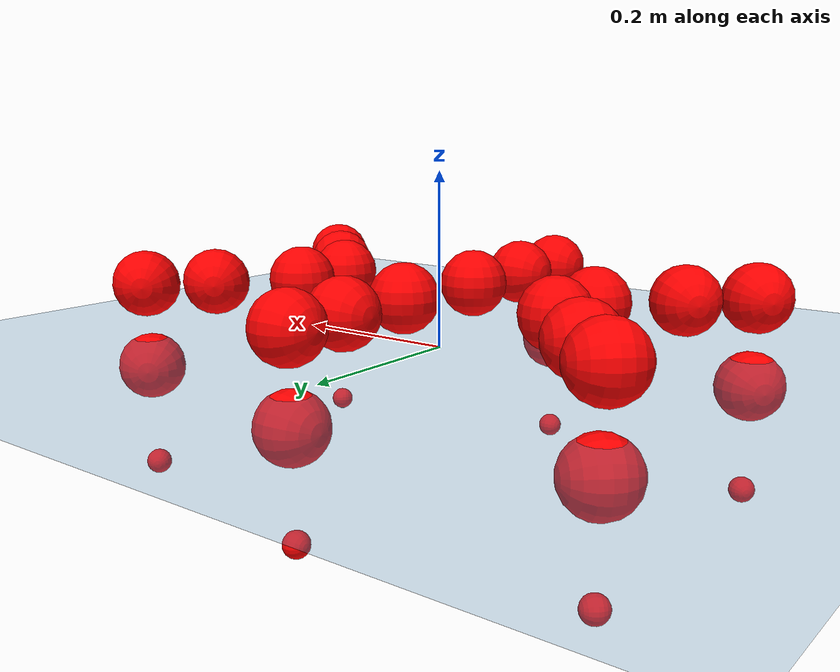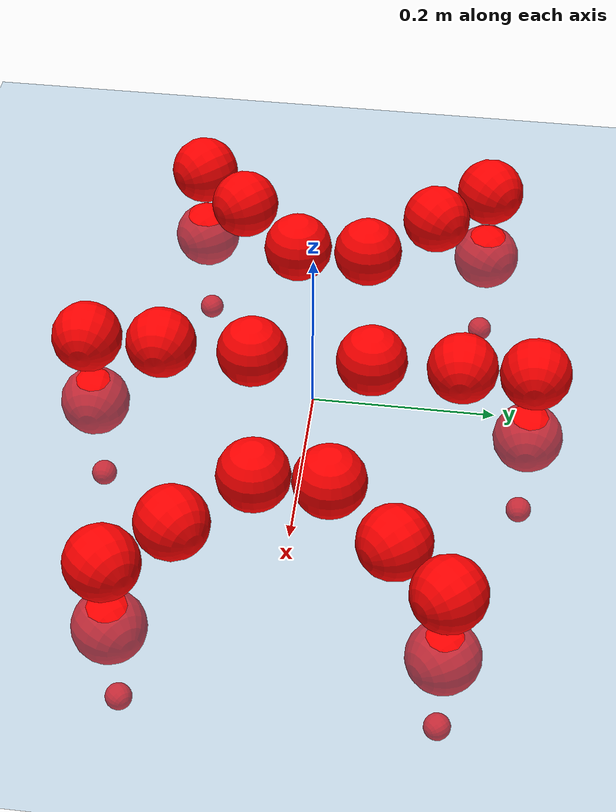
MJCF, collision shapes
<mujoco model="Golem">
  <compiler angle="radian" assetdir="assets" balanceinertia="true" inertiafromgeom="false"/>

  <option timestep="0.005" density="1.2" viscosity="2e-05"/>

  <size nkey="1"/>

  <visual>
    <quality shadowsize="8192"/>
    <map shadowclip="0.5"/>
  </visual>

  <default>
    <default class="/">
      <joint armature="0.01" damping="0.01" frictionloss="0.01"/>
      <geom contype="0" conaffinity="0" group="1" solref="-1000 -80"/>
      <site size="0.01 0.005 0.005" group="5"/>
      <general forcelimited="true" biastype="affine" gainprm="25" biasprm="0 -25 -0.5"/>
      <default class="visual">
        <geom type="mesh" group="2"/>
      </default>
      <default class="collision">
        <geom group="3"/>
      </default>
      <default class="foot">
        <geom size="0.01 0 0" condim="6" group="4" priority="1" solimp="0.015 1 0.01"/>
      </default>
      <default class="reward_collision_sphere">
        <geom group="5" rgba="1 0 0 1"/>
      </default>
    </default>
  </default>

  <asset>
    <texture type="skybox" colorspace="auto" name="//unnamed_texture_0" builtin="gradient" rgb1="0.95 0.95 0.95" rgb2="0.95 0.95 0.95" width="100" height="600"/>
    <texture type="2d" colorspace="auto" name="texplane" builtin="checker" rgb1="0.345 0.575 0.748" rgb2="0.345 0.575 0.748" markrgb="1 1 1" width="512" height="512"/>
    <material name="MatPlane" class="/" texture="texplane" texuniform="true" texrepeat="2 2" specular="0.9"/>
    <mesh name="body" class="/" file="body.stl" scale="0.001 0.001 0.001"/>
    <mesh name="coxa" class="/" file="coxa.stl" scale="0.001 0.001 0.001"/>
    <mesh name="femur" class="/" file="femur.stl" scale="0.001 0.001 0.001"/>
    <mesh name="tibia" class="/" file="tibia.stl" scale="0.001 0.001 0.001"/>
    <mesh name="tarsus" class="/" file="tarsus.stl" scale="0.001 0.001 0.001"/>
  </asset>

  <worldbody>
    <geom name="floor" class="/" size="100 100 0.125" type="plane" group="0" material="MatPlane"/>
    <light name="toplight_shadow" class="/" pos="0 0 5" dir="0.0990148 0.0990148 -0.990148" type="directional" ambient="0.04 0.04 0.04" diffuse="0.55 0.55 0.55" specular="0.12 0.12 0.12"/>
    <light name="toplight_fill" class="/" pos="0 0 5" dir="0.0990148 0.0990148 -0.990148" type="directional" castshadow="false" ambient="0.04 0.04 0.04" diffuse="0.3 0.3 0.3" specular="0.08 0.08 0.08"/>
    <body name="trunk" pos="0.00086598 9.91029e-05 0.000628124" quat="1 -1.95144e-05 1.8622e-05 0.000148255">
      <inertial pos="-0.00023346 -0.000878011 -0.00363342" quat="1 -0.000226901 7.02529e-06 -8.687e-05" mass="3.44893" diaginertia="0.018667 0.00242601 0.0120409"/>
      <joint name="//unnamed_joint_0" type="free"/>
      <geom name="//unnamed_geom_1" class="/" pos="0 0 0.0662825" quat="1 0 0 0" type="mesh" rgba="0.9 0.9 0.9 1" mesh="body"/>
      <site name="imu" class="/" pos="0.145037 -0.000864065 0.106095" size="0.00973631"/>
      <camera name="track" class="/" pos="0 -1.50487 0" quat="0.707107 0.707107 0 0" mode="trackcom"/>
      <camera name="ego_camera" class="/" pos="0.147263 0 0.103566" quat="-0.5 -0.5 0.5 0.5"/>
      <body name="coxa_RR" pos="-0.20086 -0.0632515 0.0660437" quat="0.382825 6.01813e-05 4.5793e-05 -0.923821">
        <inertial pos="-0.000303892 -9.62894e-05 0.000644039" quat="0.999991 -0.00374782 -0.000383198 0.00202455" mass="0.186667" diaginertia="0.0187319 0.00243784 0.012027"/>
        <joint name="coxa_joint_RR" class="/" pos="0 0 0" axis="0.00408063 0.00414235 -0.999983" range="-3.13236 3.13604" armature="0.0099787" damping="0.00597136" frictionloss="0.0101065"/>
        <geom name="//unnamed_geom_2" class="/" type="mesh" rgba="0.2 0.2 0.2 1" mesh="coxa"/>
        <geom name="//unnamed_geom_3" class="reward_collision_sphere" size="0.0389452" pos="-0.0339838 0 0"/>
        <body name="femur_RR" pos="0.0667598 0.00129388 -0.000198481" quat="0.499725 -0.500195 0.499981 0.500099">
          <inertial pos="0.000251493 -0.000247599 0.000419104" quat="0.999998 0.000694244 0.00110305 -0.00180501" mass="0.184515" diaginertia="0.0184555 0.00241532 0.0118898"/>
          <joint name="femur_joint_RR" class="/" pos="0 0 0" axis="0.00192418 0.00177524 -0.999997" range="-3.13137 3.14" armature="0.00985062" damping="0" frictionloss="0.00995989"/>
          <geom name="//unnamed_geom_4" class="/" type="mesh" rgba="0.9 0.9 0.9 1" mesh="femur"/>
          <geom name="//unnamed_geom_5" class="reward_collision_sphere" size="0.0389452"/>
          <body name="tibia_RR" pos="-0.000636472 -0.0810382 4.59447e-05" quat="6.53454e-05 1 -2.02334e-05 0.000106575">
            <inertial pos="-0.00052424 -0.000662156 -0.000407095" quat="1 0.000166466 -0.000765696 0.000590035" mass="0.183488" diaginertia="0.0185571 0.00241362 0.0118972"/>
            <joint name="tibia_joint_RR" class="/" pos="0 0 0" axis="-0.000523374 5.31928e-05 1" range="-3.13961 3.13954" armature="0.0097035" damping="0.000661065" frictionloss="0.0101502"/>
            <geom name="//unnamed_geom_6" class="/" type="mesh" rgba="0.2 0.2 0.2 1" mesh="tibia"/>
            <geom name="//unnamed_geom_7" class="reward_collision_sphere" size="0.0389452"/>
            <body name="tarsus_RR" pos="0.0989374 -0.000864755 -0.00124562" quat="1 1.77851e-06 -7.81485e-06 -1.07246e-06">
              <inertial pos="0.0688683 0.000584029 0.000184693" quat="0.49682 0.501044 0.500883 0.501239" mass="0.182053" diaginertia="0.0185379 0.00238979 0.0119226"/>
              <joint name="tarsus_joint_RR" class="/" pos="0 0 0" axis="-0.000209865 -0.000892259 1" range="-3.14595 3.1492" armature="0.00959585" damping="0.00279306" frictionloss="0.00977788"/>
              <geom name="//unnamed_geom_8" class="/" type="mesh" rgba="0.9 0.9 0.9 1" mesh="tarsus"/>
              <geom name="foot_1" class="foot" size="0.00929893" pos="0.126873 0 0" quat="0 -0.707107 0 0.707107"/>
              <geom name="//unnamed_geom_10" class="reward_collision_sphere" size="0.0389452"/>
              <geom name="//unnamed_geom_11" class="reward_collision_sphere" size="0.0146045" pos="0.121775 0 0"/>
              <site name="foot_1" class="foot" pos="0.126873 0 0" quat="0 -0.707107 0 0.707107" size="0.00973631"/>
            </body>
          </body>
        </body>
      </body>
      <body name="coxa_RM" pos="-0.000482856 -0.10044 0.0651742" quat="0.707063 -0.000148181 0.000160016 -0.70715">
        <inertial pos="-0.000169382 0.000870979 -0.000177729" quat="0.999999 0.000218564 -0.00104141 -0.000157931" mass="0.183603" diaginertia="0.0186069 0.00241219 0.0118052"/>
        <joint name="coxa_joint_RM" class="/" pos="0 0 0" axis="-0.000941016 0.00106364 -0.999999" range="-3.14725 3.14333" armature="0.00968482" damping="0.00870216" frictionloss="0.00973519"/>
        <geom name="//unnamed_geom_12" class="/" type="mesh" rgba="0.2 0.2 0.2 1" mesh="coxa"/>
        <geom name="//unnamed_geom_13" class="reward_collision_sphere" size="0.0389452" pos="-0.0339838 0 0"/>
        <body name="femur_RM" pos="0.0664556 -0.000756693 0.000782057" quat="0.500025 -0.500035 0.500004 0.499937">
          <inertial pos="-1.57624e-05 0.000667377 -0.000466799" quat="1 0.000358978 0.00039864 -0.00031608" mass="0.183346" diaginertia="0.0186494 0.00241001 0.011844"/>
          <joint name="femur_joint_RM" class="/" pos="0 0 0" axis="0.0011079 -0.00252731 -0.999996" range="-3.12999 3.13637" armature="0.0096249" damping="0.00554369" frictionloss="0.00989068"/>
          <geom name="//unnamed_geom_14" class="/" type="mesh" rgba="0.9 0.9 0.9 1" mesh="femur"/>
          <geom name="//unnamed_geom_15" class="reward_collision_sphere" size="0.0389452"/>
          <body name="tibia_RM" pos="0.000778481 -0.0822288 -0.000215081" quat="-8.00184e-05 1 -9.74316e-06 -0.00022945">
            <inertial pos="-0.000105887 0.000320644 0.000238338" quat="1 -8.10247e-05 -0.000157355 0.000114883" mass="0.183712" diaginertia="0.0184325 0.002386 0.0119028"/>
            <joint name="tibia_joint_RM" class="/" pos="0 0 0" axis="-0.00122812 0.00023737 0.999999" range="-3.14009 3.14729" armature="0.00954083" damping="0" frictionloss="0.00954948"/>
            <geom name="//unnamed_geom_16" class="/" type="mesh" rgba="0.2 0.2 0.2 1" mesh="tibia"/>
            <geom name="//unnamed_geom_17" class="reward_collision_sphere" size="0.0389452"/>
            <body name="tarsus_RM" pos="0.0999679 -0.000621314 0.00067176" quat="1 -8.20476e-05 8.06961e-06 -4.63866e-05">
              <inertial pos="0.0677589 0.000710676 -0.000666268" quat="0.496632 0.501142 0.500637 0.501573" mass="0.184794" diaginertia="0.0184915 0.0024148 0.0118923"/>
              <joint name="tarsus_joint_RM" class="/" pos="0 0 0" axis="-0.00131869 0.000180342 0.999999" range="-3.13114 3.13597" armature="0.00968335" damping="0.00832672" frictionloss="0.00951024"/>
              <geom name="//unnamed_geom_18" class="/" type="mesh" rgba="0.9 0.9 0.9 1" mesh="tarsus"/>
              <geom name="foot_2" class="foot" size="0.00983795" pos="0.126873 0 0" quat="0 -0.707107 0 0.707107"/>
              <geom name="//unnamed_geom_20" class="reward_collision_sphere" size="0.0389452"/>
              <geom name="//unnamed_geom_21" class="reward_collision_sphere" size="0.0146045" pos="0.121775 0 0"/>
              <site name="foot_2" class="foot" pos="0.126873 0 0" quat="0 -0.707107 0 0.707107" size="0.00973631"/>
            </body>
          </body>
        </body>
      </body>
      <body name="coxa_RF" pos="0.202604 -0.0627601 0.0662426" quat="0.923756 -0.000252128 0.00034852 -0.382982">
        <inertial pos="-3.62133e-05 -0.000754975 0.000677293" quat="0.999998 0.000622357 -0.00144797 -0.000814875" mass="0.181848" diaginertia="0.0184274 0.00240126 0.0118668"/>
        <joint name="coxa_joint_RF" class="/" pos="0 0 0" axis="-0.000814792 0.00342451 -0.999994" range="-3.13865 3.12136" armature="0.00981325" damping="0" frictionloss="0.00970424"/>
        <geom name="//unnamed_geom_22" class="/" type="mesh" rgba="0.2 0.2 0.2 1" mesh="coxa"/>
        <geom name="//unnamed_geom_23" class="reward_collision_sphere" size="0.0389452" pos="-0.0339838 0 0"/>
        <body name="femur_RF" pos="0.0672537 0.00117114 -0.000166571" quat="0.499957 -0.499976 0.500034 0.500033">
          <inertial pos="0.000296051 -0.000295545 -0.000604525" quat="0.999998 0.00132934 -0.00138557 0.000740338" mass="0.184825" diaginertia="0.0185887 0.00237861 0.0118303"/>
          <joint name="femur_joint_RF" class="/" pos="0 0 0" axis="0.00029183 0.000461301 -1" range="-3.14089 3.14718" armature="0.00971893" damping="0.00582426" frictionloss="0.0101338"/>
          <geom name="//unnamed_geom_24" class="/" type="mesh" rgba="0.9 0.9 0.9 1" mesh="femur"/>
          <geom name="//unnamed_geom_25" class="reward_collision_sphere" size="0.0389452"/>
          <body name="tibia_RF" pos="0.000423288 -0.0824339 -3.94399e-05" quat="0.000146424 1 3.80455e-05 -7.46678e-05">
            <inertial pos="-0.000724095 0.000621373 8.18062e-06" quat="0.999999 -0.000900075 0.000616167 -0.00020954" mass="0.186436" diaginertia="0.0188648 0.00243799 0.011898"/>
            <joint name="tibia_joint_RF" class="/" pos="0 0 0" axis="-0.00503065 0.00284062 0.999983" stiffness="7.28402e-05" range="-3.13904 3.13952" armature="0.00996012" damping="0.00560184" frictionloss="0.00987816"/>
            <geom name="//unnamed_geom_26" class="/" type="mesh" rgba="0.2 0.2 0.2 1" mesh="tibia"/>
            <geom name="//unnamed_geom_27" class="reward_collision_sphere" size="0.0389452"/>
            <body name="tarsus_RF" pos="0.0993354 0.00106398 -0.000639641" quat="1 0.00016041 -0.000292285 -4.31896e-05">
              <inertial pos="0.0673476 0.00030567 -0.000205571" quat="0.499111 0.500434 0.499813 0.50064" mass="0.184266" diaginertia="0.01862 0.00243148 0.0118244"/>
              <joint name="tarsus_joint_RF" class="/" pos="0 0 0" axis="6.79449e-05 -0.00147864 0.999999" stiffness="0.00290175" range="-3.12428 3.13757" armature="0.00972628" damping="0.00142258" frictionloss="0.00956881"/>
              <geom name="//unnamed_geom_28" class="/" type="mesh" rgba="0.9 0.9 0.9 1" mesh="tarsus"/>
              <geom name="foot_3" class="foot" size="0.0100159" pos="0.126873 0 0" quat="0 -0.707107 0 0.707107"/>
              <geom name="//unnamed_geom_30" class="reward_collision_sphere" size="0.0389452"/>
              <geom name="//unnamed_geom_31" class="reward_collision_sphere" size="0.0146045" pos="0.121775 0 0"/>
              <site name="foot_3" class="foot" pos="0.126873 0 0" quat="0 -0.707107 0 0.707107" size="0.00973631"/>
            </body>
          </body>
        </body>
      </body>
      <body name="coxa_LR" pos="-0.201282 0.0655101 0.0673052" quat="0.382846 -1.95729e-05 5.97713e-05 0.923812">
        <inertial pos="-0.000100803 -0.000616671 0.000588178" quat="0.999999 0.00100593 -0.000453942 -0.000360242" mass="0.183947" diaginertia="0.0186727 0.00242501 0.0119293"/>
        <joint name="coxa_joint_LR" class="/" pos="0 0 0" axis="5.7261e-05 0.00182398 -0.999998" range="-3.12952 3.14331" armature="0.00985738" damping="0.00939453" frictionloss="0.00972664"/>
        <geom name="//unnamed_geom_32" class="/" type="mesh" rgba="0.2 0.2 0.2 1" mesh="coxa"/>
        <geom name="//unnamed_geom_33" class="reward_collision_sphere" size="0.0389452" pos="-0.0339838 0 0"/>
        <body name="femur_LR" pos="0.068393 -0.0015058 -0.00236343" quat="0.500002 -0.500001 0.499993 0.500004">
          <inertial pos="-0.000488648 0.000190387 -0.00100538" quat="1 0.000279374 0.000238178 -0.000116961" mass="0.182726" diaginertia="0.0186743 0.00240516 0.0118992"/>
          <joint name="femur_joint_LR" class="/" pos="0 0 0" axis="-6.38278e-06 0.000103728 1" range="-3.14722 3.14191" armature="0.0097808" damping="0.00675355" frictionloss="0.00983299"/>
          <geom name="//unnamed_geom_34" class="/" type="mesh" rgba="0.9 0.9 0.9 1" mesh="femur"/>
          <geom name="//unnamed_geom_35" class="reward_collision_sphere" size="0.0389452"/>
          <body name="tibia_LR" pos="-0.00072369 -0.0826771 -0.00200445" quat="-5.45373e-05 1 -9.37051e-05 -0.000197871">
            <inertial pos="-0.000713447 0.00041621 -0.000132372" quat="1 0.000372378 -0.000388888 0.000360344" mass="0.182787" diaginertia="0.0187505 0.00239357 0.0120326"/>
            <joint name="tibia_joint_LR" class="/" pos="0 0 0" axis="-0.0012812 -0.00088723 -0.999999" range="-3.13621 3.14983" armature="0.00968246" damping="0.0038115" frictionloss="0.00978824"/>
            <geom name="//unnamed_geom_36" class="/" type="mesh" rgba="0.2 0.2 0.2 1" mesh="tibia"/>
            <geom name="//unnamed_geom_37" class="reward_collision_sphere" size="0.0389452"/>
            <body name="tarsus_LR" pos="0.0992506 0.000672615 0.00212054" quat="1 2.47399e-06 1.47123e-06 -1.21109e-06">
              <inertial pos="0.0688036 0.00108019 -0.000194776" quat="0.50007 0.499912 0.500052 0.499965" mass="0.184392" diaginertia="0.0186928 0.00242488 0.0118308"/>
              <joint name="tarsus_joint_LR" class="/" pos="0 0 0" axis="-0.000124376 -0.00033624 -1" range="-3.13863 3.1345" armature="0.00962243" damping="0.0263785" frictionloss="0.00957708"/>
              <geom name="//unnamed_geom_38" class="/" type="mesh" rgba="0.9 0.9 0.9 1" mesh="tarsus"/>
              <geom name="foot_4" class="foot" size="0.00954633" pos="0.126873 0 0" quat="0.707107 0 -0.707107 0"/>
              <geom name="//unnamed_geom_40" class="reward_collision_sphere" size="0.0389452"/>
              <geom name="//unnamed_geom_41" class="reward_collision_sphere" size="0.0146045" pos="0.121775 0 0"/>
              <site name="foot_4" class="foot" pos="0.126873 0 0" quat="0.707107 0 -0.707107 0" size="0.00973631"/>
            </body>
          </body>
        </body>
      </body>
      <body name="coxa_LM" pos="-0.00109234 0.097619 0.0664821" quat="0.7072 -0.000148686 7.14854e-05 0.707014">
        <inertial pos="-6.13422e-05 8.09843e-05 0.000832794" quat="1 -0.000391049 -9.96553e-05 1.0765e-05" mass="0.185504" diaginertia="0.0188897 0.00242573 0.011911"/>
        <joint name="coxa_joint_LM" class="/" pos="0 0 0" axis="0.00032986 -0.000536406 -1" range="-3.13994 3.13959" armature="0.00975553" damping="0.000958117" frictionloss="0.0101367"/>
        <geom name="//unnamed_geom_42" class="/" type="mesh" rgba="0.2 0.2 0.2 1" mesh="coxa"/>
        <geom name="//unnamed_geom_43" class="reward_collision_sphere" size="0.0389452" pos="-0.0339838 0 0"/>
        <body name="femur_LM" pos="0.0638874 0.00136111 -0.00107356" quat="0.499999 -0.500064 0.4999 0.500037">
          <inertial pos="-0.000953974 -0.000377339 0.000754825" quat="0.999999 -0.0012174 -0.000183898 -0.000144839" mass="0.182395" diaginertia="0.0183092 0.00239426 0.0117169"/>
          <joint name="femur_joint_LM" class="/" pos="0 0 0" axis="-0.0025044 -0.0049614 0.999985" range="-3.14128 3.1492" armature="0.00953764" damping="0" frictionloss="0.00973779"/>
          <geom name="//unnamed_geom_44" class="/" type="mesh" rgba="0.9 0.9 0.9 1" mesh="femur"/>
          <geom name="//unnamed_geom_45" class="reward_collision_sphere" size="0.0389452"/>
          <body name="tibia_LM" pos="0.000453318 -0.0783887 0.00112606" quat="-9.63243e-05 1 4.89958e-05 -2.24452e-05">
            <inertial pos="-1.10412e-06 -0.00163596 -0.000190468" quat="0.999999 -0.000246455 -0.000766324 0.000886825" mass="0.184881" diaginertia="0.0185971 0.00239933 0.0117567"/>
            <joint name="tibia_joint_LM" class="/" pos="0 0 0" axis="-0.00165162 -0.000360103 -0.999999" range="-3.13181 3.14787" armature="0.0101492" damping="0.000315321" frictionloss="0.00940837"/>
            <geom name="//unnamed_geom_46" class="/" type="mesh" rgba="0.2 0.2 0.2 1" mesh="tibia"/>
            <geom name="//unnamed_geom_47" class="reward_collision_sphere" size="0.0389452"/>
            <body name="tarsus_LM" pos="0.0990454 -0.000465775 -0.000786759" quat="1 6.83455e-05 4.19371e-05 3.91957e-05">
              <inertial pos="0.0687119 0.00023847 0.000776358" quat="0.499533 0.500254 0.501948 0.498257" mass="0.185872" diaginertia="0.0189436 0.00241163 0.0120892"/>
              <joint name="tarsus_joint_LM" class="/" pos="0 0 0" axis="-0.000119077 -0.000845654 -1" range="-3.15445 3.13845" armature="0.00985866" damping="0" frictionloss="0.00962366"/>
              <geom name="//unnamed_geom_48" class="/" type="mesh" rgba="0.9 0.9 0.9 1" mesh="tarsus"/>
              <geom name="foot_5" class="foot" size="0.0101089" pos="0.126873 0 0" quat="0.707107 0 -0.707107 0"/>
              <geom name="//unnamed_geom_50" class="reward_collision_sphere" size="0.0389452"/>
              <geom name="//unnamed_geom_51" class="reward_collision_sphere" size="0.0146045" pos="0.121775 0 0"/>
              <site name="foot_5" class="foot" pos="0.126873 0 0" quat="0.707107 0 -0.707107 0" size="0.00973631"/>
            </body>
          </body>
        </body>
      </body>
      <body name="coxa_LF" pos="0.20164 0.0628694 0.0662175" quat="0.9239 1.60589e-05 -6.63118e-05 0.382634">
        <inertial pos="0.00017097 -0.000231238 -0.000113573" quat="0.999999 -0.0014385 6.23925e-05 -0.000829124" mass="0.186696" diaginertia="0.018789 0.00241351 0.0119334"/>
        <joint name="coxa_joint_LF" class="/" pos="0 0 0" axis="0.00151041 0.00771022 -0.999969" range="-3.15526 3.13977" armature="0.00942675" damping="0" frictionloss="0.0100282"/>
        <geom name="//unnamed_geom_52" class="/" type="mesh" rgba="0.2 0.2 0.2 1" mesh="coxa"/>
        <geom name="//unnamed_geom_53" class="reward_collision_sphere" size="0.0389452" pos="-0.0339838 0 0"/>
        <body name="femur_LF" pos="0.0673319 0.000892449 -0.000798761" quat="0.500097 -0.499806 0.500054 0.500043">
          <inertial pos="0.000279477 -0.00086611 0.000356445" quat="0.999997 0.00129918 -0.00141995 0.00140648" mass="0.183002" diaginertia="0.0184927 0.00239051 0.0119119"/>
          <joint name="femur_joint_LF" class="/" pos="0 0 0" axis="0.00153135 -0.00471229 0.999988" range="-3.14853 3.13996" armature="0.0093011" damping="0.00188778" frictionloss="0.00975747"/>
          <geom name="//unnamed_geom_54" class="/" type="mesh" rgba="0.9 0.9 0.9 1" mesh="femur"/>
          <geom name="//unnamed_geom_55" class="reward_collision_sphere" size="0.0389452"/>
          <body name="tibia_LF" pos="0.000459729 -0.0809819 0.000222766" quat="3.00977e-05 1 1.55691e-05 -1.69274e-05">
            <inertial pos="7.20133e-06 0.000105563 0.000523688" quat="1 0.000505962 0.000264543 0.000664904" mass="0.184689" diaginertia="0.0185926 0.00238729 0.0119888"/>
            <joint name="tibia_joint_LF" class="/" pos="0 0 0" axis="-0.00194517 -0.00477112 -0.999987" range="-3.15684 3.14012" armature="0.0095147" damping="0.00248837" frictionloss="0.0101536"/>
            <geom name="//unnamed_geom_56" class="/" type="mesh" rgba="0.2 0.2 0.2 1" mesh="tibia"/>
            <geom name="//unnamed_geom_57" class="reward_collision_sphere" size="0.0389452"/>
            <body name="tarsus_LF" pos="0.0997793 -0.000321306 5.51817e-05" quat="1 -2.52019e-05 -3.11442e-05 7.29681e-06">
              <inertial pos="0.0690981 -0.000189725 -9.3454e-05" quat="0.501434 0.49965 0.497638 0.501269" mass="0.184963" diaginertia="0.018582 0.00240791 0.0119895"/>
              <joint name="tarsus_joint_LF" class="/" pos="0 0 0" axis="0.00054527 0.00143468 -0.999999" range="-3.12841 3.13664" armature="0.00934298" damping="0.0112964" frictionloss="0.00937364"/>
              <geom name="//unnamed_geom_58" class="/" type="mesh" rgba="0.9 0.9 0.9 1" mesh="tarsus"/>
              <geom name="foot_6" class="foot" size="0.00946756" pos="0.126873 0 0" quat="0.707107 0 -0.707107 0"/>
              <geom name="//unnamed_geom_60" class="reward_collision_sphere" size="0.0389452"/>
              <geom name="//unnamed_geom_61" class="reward_collision_sphere" size="0.0146045" pos="0.121775 0 0"/>
              <site name="foot_6" class="foot" pos="0.126873 0 0" quat="0.707107 0 -0.707107 0" size="0.00973631"/>
            </body>
          </body>
        </body>
      </body>
    </body>
  </worldbody>

  <contact>
    <pair class="/" geom1="floor" geom2="foot_1" name="//unnamed_contact_0"/>
    <pair class="/" geom1="floor" geom2="foot_2" name="//unnamed_contact_1"/>
    <pair class="/" geom1="floor" geom2="foot_3" name="//unnamed_contact_2"/>
    <pair class="/" geom1="floor" geom2="foot_4" name="//unnamed_contact_3"/>
    <pair class="/" geom1="floor" geom2="foot_5" name="//unnamed_contact_4"/>
    <pair class="/" geom1="floor" geom2="foot_6" name="//unnamed_contact_5"/>
  </contact>

  <actuator>
    <general name="coxa_joint_RR" class="/" joint="coxa_joint_RR" forcerange="-6.9833 6.9833" gainprm="23.2831" biasprm="0 -23.2831 -0.508827"/>
    <general name="femur_joint_RR" class="/" joint="femur_joint_RR" forcerange="-7.15896 7.15896" gainprm="23.2831" biasprm="0 -23.2831 -0.508827"/>
    <general name="tibia_joint_RR" class="/" joint="tibia_joint_RR" forcerange="-7.1237 7.1237" gainprm="23.2831" biasprm="0 -23.2831 -0.508827"/>
    <general name="tarsus_joint_RR" class="/" joint="tarsus_joint_RR" forcerange="-7.03639 7.03639" gainprm="23.2831" biasprm="0 -23.2831 -0.508827"/>
    <general name="coxa_joint_RM" class="/" joint="coxa_joint_RM" forcerange="-7.18802 7.18802" gainprm="23.2831" biasprm="0 -23.2831 -0.508827"/>
    <general name="femur_joint_RM" class="/" joint="femur_joint_RM" forcerange="-7.16059 7.16059" gainprm="23.2831" biasprm="0 -23.2831 -0.508827"/>
    <general name="tibia_joint_RM" class="/" joint="tibia_joint_RM" forcerange="-7.08306 7.08306" gainprm="23.2831" biasprm="0 -23.2831 -0.508827"/>
    <general name="tarsus_joint_RM" class="/" joint="tarsus_joint_RM" forcerange="-7.31903 7.31903" gainprm="23.2831" biasprm="0 -23.2831 -0.508827"/>
    <general name="coxa_joint_RF" class="/" joint="coxa_joint_RF" forcerange="-7.18802 7.18802" gainprm="23.2831" biasprm="0 -23.2831 -0.508827"/>
    <general name="femur_joint_RF" class="/" joint="femur_joint_RF" forcerange="-7.11095 7.11095" gainprm="23.2831" biasprm="0 -23.2831 -0.508827"/>
    <general name="tibia_joint_RF" class="/" joint="tibia_joint_RF" forcerange="-7.08887 7.08887" gainprm="23.2831" biasprm="0 -23.2831 -0.508827"/>
    <general name="tarsus_joint_RF" class="/" joint="tarsus_joint_RF" forcerange="-6.98422 6.98422" gainprm="23.2831" biasprm="0 -23.2831 -0.508827"/>
    <general name="coxa_joint_LR" class="/" joint="coxa_joint_LR" forcerange="-7.07473 7.07473" gainprm="23.2831" biasprm="0 -23.2831 -0.508827"/>
    <general name="femur_joint_LR" class="/" joint="femur_joint_LR" forcerange="-7.24382 7.24382" gainprm="23.2831" biasprm="0 -23.2831 -0.508827"/>
    <general name="tibia_joint_LR" class="/" joint="tibia_joint_LR" forcerange="-7.17339 7.17339" gainprm="23.2831" biasprm="0 -23.2831 -0.508827"/>
    <general name="tarsus_joint_LR" class="/" joint="tarsus_joint_LR" forcerange="-7.11838 7.11838" gainprm="23.2831" biasprm="0 -23.2831 -0.508827"/>
    <general name="coxa_joint_LM" class="/" joint="coxa_joint_LM" forcerange="-7.05509 7.05509" gainprm="23.2831" biasprm="0 -23.2831 -0.508827"/>
    <general name="femur_joint_LM" class="/" joint="femur_joint_LM" forcerange="-7.24334 7.24334" gainprm="23.2831" biasprm="0 -23.2831 -0.508827"/>
    <general name="tibia_joint_LM" class="/" joint="tibia_joint_LM" forcerange="-7.11647 7.11647" gainprm="23.2831" biasprm="0 -23.2831 -0.508827"/>
    <general name="tarsus_joint_LM" class="/" joint="tarsus_joint_LM" forcerange="-6.9012 6.9012" gainprm="23.2831" biasprm="0 -23.2831 -0.508827"/>
    <general name="coxa_joint_LF" class="/" joint="coxa_joint_LF" forcerange="-7.03041 7.03041" gainprm="23.2831" biasprm="0 -23.2831 -0.508827"/>
    <general name="femur_joint_LF" class="/" joint="femur_joint_LF" forcerange="-6.88607 6.88607" gainprm="23.2831" biasprm="0 -23.2831 -0.508827"/>
    <general name="tibia_joint_LF" class="/" joint="tibia_joint_LF" forcerange="-7.11911 7.11911" gainprm="23.2831" biasprm="0 -23.2831 -0.508827"/>
    <general name="tarsus_joint_LF" class="/" joint="tarsus_joint_LF" forcerange="-6.93886 6.93886" gainprm="23.2831" biasprm="0 -23.2831 -0.508827"/>
  </actuator>

  <sensor>
    <gyro site="imu" name="imu_angular_velocity"/>
    <velocimeter site="imu" name="imu_linear_velocity"/>
    <framelinvel objtype="site" objname="foot_1" name="foot_1_global_linear_velocity"/>
    <framelinvel objtype="site" objname="foot_2" name="foot_2_global_linear_velocity"/>
    <framelinvel objtype="site" objname="foot_3" name="foot_3_global_linear_velocity"/>
    <framelinvel objtype="site" objname="foot_4" name="foot_4_global_linear_velocity"/>
    <framelinvel objtype="site" objname="foot_5" name="foot_5_global_linear_velocity"/>
    <framelinvel objtype="site" objname="foot_6" name="foot_6_global_linear_velocity"/>
  </sensor>

  <keyframe>
    <key name="home" qpos="0 0 0.1457 1 0 0 0 0 0 0 0 0 0 0 0 0 0 0 0 0 0 0 0 0 0 0 0 0 0 0 0"/>
  </keyframe>
</mujoco>
